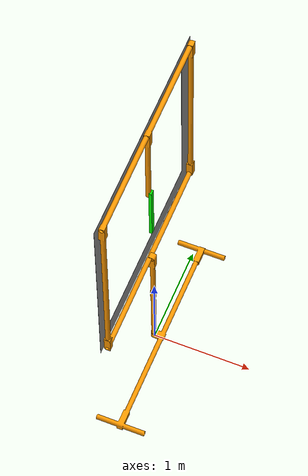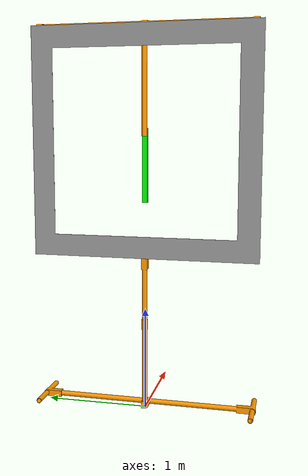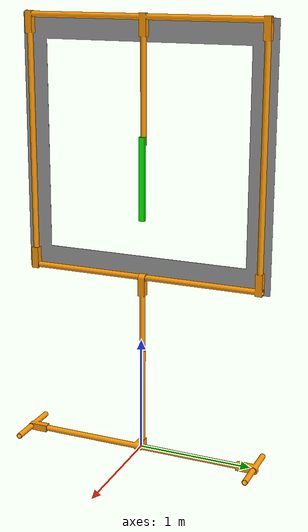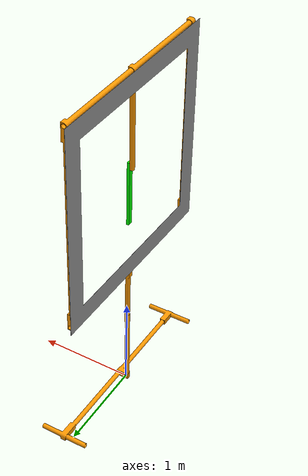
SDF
<?xml version='1.0'?>
<sdf version='1.6'>
  <model name='dynamic_gate'>
    <link name='link_0'>
      <pose frame=''>-0.18 1.12 0 1.57 -0 0</pose>
      <inertial>
        <mass>5</mass>
        <inertia>
          <ixx>0.166667</ixx>
          <ixy>0</ixy>
          <ixz>0</ixz>
          <iyy>0.166667</iyy>
          <iyz>0</iyz>
          <izz>0.166667</izz>
        </inertia>
        <pose frame=''>0 0 0 0 -0 0</pose>
      </inertial>
      <gravity>1</gravity>
      <self_collide>0</self_collide>
      <kinematic>0</kinematic>
      <visual name='visual'>
        <pose frame=''>0 0 0 0 -0 0</pose>
        <geometry>
          <mesh>
            <uri>model://dynamic_gate/meshes/base.stl</uri>
            <scale>1 1 1</scale>
          </mesh>
        </geometry>
        <material>
          <lighting>1</lighting>
          <script>
            <uri>file://media/materials/scripts/gazebo.material</uri>
            <name>Gazebo/Grey</name>
          </script>
          <ambient>1 0.6 0 1</ambient>
          <diffuse>1 0.6 0 1</diffuse>
          <specular>0.01 0.01 0.01 1</specular>
          <emissive>0 0 0 1</emissive>
          <shader type='vertex'>
            <normal_map>__default__</normal_map>
          </shader>
        </material>
        <cast_shadows>1</cast_shadows>
        <transparency>0</transparency>
      </visual>
      <collision name='collision'>
        <laser_retro>0</laser_retro>
        <max_contacts>10</max_contacts>
        <pose frame=''>0 0 0 0 -0 0</pose>
        <geometry>
          <mesh>
            <uri>model://dynamic_gate/meshes/base.stl</uri>
          </mesh>
        </geometry>
        <surface>
          <friction>
            <ode>
              <mu>1</mu>
              <mu2>1</mu2>
              <fdir1>0 0 0</fdir1>
              <slip1>0</slip1>
              <slip2>0</slip2>
            </ode>
            <torsional>
              <coefficient>1</coefficient>
              <patch_radius>0</patch_radius>
              <surface_radius>0</surface_radius>
              <use_patch_radius>1</use_patch_radius>
              <ode>
                <slip>0</slip>
              </ode>
            </torsional>
          </friction>
          <bounce>
            <restitution_coefficient>0</restitution_coefficient>
            <threshold>1e+06</threshold>
          </bounce>
          <contact>
            <collide_without_contact>0</collide_without_contact>
            <collide_without_contact_bitmask>1</collide_without_contact_bitmask>
            <collide_bitmask>1</collide_bitmask>
            <ode>
              <soft_cfm>0</soft_cfm>
              <soft_erp>0.2</soft_erp>
              <kp>1e+13</kp>
              <kd>1</kd>
              <max_vel>0.01</max_vel>
              <min_depth>0</min_depth>
            </ode>
            <bullet>
              <split_impulse>1</split_impulse>
              <split_impulse_penetration_threshold>-0.01</split_impulse_penetration_threshold>
              <soft_cfm>0</soft_cfm>
              <soft_erp>0.2</soft_erp>
              <kp>1e+13</kp>
              <kd>1</kd>
            </bullet>
          </contact>
        </surface>
      </collision>
    </link>
    <link name='link_1'>
      <pose frame=''>0 -1.05 0.53 0 -0 1.57</pose>
      <inertial>
        <mass>0.1</mass>
        <inertia>
          <ixx>0.166667</ixx>
          <ixy>0</ixy>
          <ixz>0</ixz>
          <iyy>0.166667</iyy>
          <iyz>0</iyz>
          <izz>0.166667</izz>
        </inertia>
        <pose frame=''>0 0 0 0 -0 0</pose>
      </inertial>
      <gravity>1</gravity>
      <self_collide>0</self_collide>
      <kinematic>0</kinematic>
      <visual name='visual'>
        <pose frame=''>0 0 0 0 -0 0</pose>
        <geometry>
          <mesh>
            <uri>model://dynamic_gate/meshes/frame.stl</uri>
            <scale>1 1 1</scale>
          </mesh>
        </geometry>
        <material>
          <lighting>1</lighting>
          <script>
            <uri>file://media/materials/scripts/gazebo.material</uri>
            <name>Gazebo/Grey</name>
          </script>
          <ambient>1 0.6 0 1</ambient>
          <diffuse>1 0.6 0 1</diffuse>
          <specular>0.01 0.01 0.01 1</specular>
          <emissive>0 0 0 1</emissive>
          <shader type='vertex'>
            <normal_map>__default__</normal_map>
          </shader>
        </material>
        <cast_shadows>1</cast_shadows>
        <transparency>0</transparency>
      </visual>
      <collision name='collision'>
        <laser_retro>0</laser_retro>
        <max_contacts>10</max_contacts>
        <pose frame=''>0 0 0 0 -0 0</pose>
        <geometry>
          <mesh>
            <uri>model://dynamic_gate/meshes/frame.stl</uri>
          </mesh>
        </geometry>
        <surface>
          <friction>
            <ode>
              <mu>1</mu>
              <mu2>1</mu2>
              <fdir1>0 0 0</fdir1>
              <slip1>0</slip1>
              <slip2>0</slip2>
            </ode>
            <torsional>
              <coefficient>1</coefficient>
              <patch_radius>0</patch_radius>
              <surface_radius>0</surface_radius>
              <use_patch_radius>1</use_patch_radius>
              <ode>
                <slip>0</slip>
              </ode>
            </torsional>
          </friction>
          <bounce>
            <restitution_coefficient>0</restitution_coefficient>
            <threshold>1e+06</threshold>
          </bounce>
          <contact>
            <collide_without_contact>0</collide_without_contact>
            <collide_without_contact_bitmask>1</collide_without_contact_bitmask>
            <collide_bitmask>1</collide_bitmask>
            <ode>
              <soft_cfm>0</soft_cfm>
              <soft_erp>0.2</soft_erp>
              <kp>1e+13</kp>
              <kd>1</kd>
              <max_vel>0.01</max_vel>
              <min_depth>0</min_depth>
            </ode>
            <bullet>
              <split_impulse>1</split_impulse>
              <split_impulse_penetration_threshold>-0.01</split_impulse_penetration_threshold>
              <soft_cfm>0</soft_cfm>
              <soft_erp>0.2</soft_erp>
              <kp>1e+13</kp>
              <kd>1</kd>
            </bullet>
          </contact>
        </surface>
      </collision>
    </link>
    <link name='link_2'>
      <pose frame=''>-0.08 -1.1 4.3 0 1.57 0</pose>
      <inertial>
        <mass>1</mass>
        <inertia>
          <ixx>0.166667</ixx>
          <ixy>0</ixy>
          <ixz>0</ixz>
          <iyy>0.166667</iyy>
          <iyz>0</iyz>
          <izz>0.166667</izz>
        </inertia>
        <pose frame=''>0 0 0 0 -0 0</pose>
      </inertial>
      <gravity>1</gravity>
      <self_collide>0</self_collide>
      <kinematic>0</kinematic>
      <visual name='visual'>
        <pose frame=''>0 0 0 0 -0 0</pose>
        <geometry>
          <mesh>
            <uri>model://dynamic_gate/meshes/background.stl</uri>
            <scale>1 1 1</scale>
          </mesh>
        </geometry>
        <material>
          <lighting>1</lighting>
          <script>
            <uri>file://media/materials/scripts/gazebo.material</uri>
            <name>Gazebo/Grey</name>
          </script>
          <ambient>0.9 0.9 0.9 1</ambient>
          <diffuse>0.9 0.9 0.9 1</diffuse>
          <specular>0.01 0.01 0.01 1</specular>
          <emissive>0 0 0 1</emissive>
          <shader type='vertex'>
            <normal_map>__default__</normal_map>
          </shader>
        </material>
        <cast_shadows>1</cast_shadows>
        <transparency>0</transparency>
      </visual>
      <collision name='collision'>
        <laser_retro>0</laser_retro>
        <max_contacts>10</max_contacts>
        <pose frame=''>0 0 0 0 -0 0</pose>
        <geometry>
          <mesh>
            <uri>model://dynamic_gate/meshes/background.stl</uri>
          </mesh>
        </geometry>
        <surface>
          <friction>
            <ode>
              <mu>1</mu>
              <mu2>1</mu2>
              <fdir1>0 0 0</fdir1>
              <slip1>0</slip1>
              <slip2>0</slip2>
            </ode>
            <torsional>
              <coefficient>1</coefficient>
              <patch_radius>0</patch_radius>
              <surface_radius>0</surface_radius>
              <use_patch_radius>1</use_patch_radius>
              <ode>
                <slip>0</slip>
              </ode>
            </torsional>
          </friction>
          <bounce>
            <restitution_coefficient>0</restitution_coefficient>
            <threshold>1e+06</threshold>
          </bounce>
          <contact>
            <collide_without_contact>0</collide_without_contact>
            <collide_without_contact_bitmask>1</collide_without_contact_bitmask>
            <collide_bitmask>1</collide_bitmask>
            <ode>
              <soft_cfm>0</soft_cfm>
              <soft_erp>0.2</soft_erp>
              <kp>1e+13</kp>
              <kd>1</kd>
              <max_vel>0.01</max_vel>
              <min_depth>0</min_depth>
            </ode>
            <bullet>
              <split_impulse>1</split_impulse>
              <split_impulse_penetration_threshold>-0.01</split_impulse_penetration_threshold>
              <soft_cfm>0</soft_cfm>
              <soft_erp>0.2</soft_erp>
              <kp>1e+13</kp>
              <kd>1</kd>
            </bullet>
          </contact>
        </surface>
      </collision>
    </link>
		<link name='link_3'>
      <pose frame=''>0 0.025 2.05 1.57 -1.57 0</pose>
      <inertial>
        <mass>1</mass>
        <inertia>
          <ixx>0.166667</ixx>
          <ixy>0</ixy>
          <ixz>0</ixz>
          <iyy>0.166667</iyy>
          <iyz>0</iyz>
          <izz>0.166667</izz>
        </inertia>
        <pose frame=''>0 0 0 0 -0 0</pose>
      </inertial>
      <gravity>1</gravity>
      <self_collide>0</self_collide>
      <kinematic>0</kinematic>
      <visual name='visual'>
        <pose frame=''>0 0 0 0 -0 0</pose>
        <geometry>
          <mesh>
            <uri>model://dynamic_gate/meshes/obstacle.stl</uri>
            <scale>1000 1000 300</scale>
          </mesh>
        </geometry>
        <material>
          <lighting>1</lighting>
          <script>
            <uri>file://media/materials/scripts/gazebo.material</uri>
            <name>Gazebo/Grey</name>
          </script>
          <ambient>0 1 0 1</ambient>
          <diffuse>0 1 0 1</diffuse>
          <specular>0.01 0.01 0.01 1</specular>
          <emissive>0 0 0 1</emissive>
          <shader type='vertex'>
            <normal_map>__default__</normal_map>
          </shader>
        </material>
        <cast_shadows>1</cast_shadows>
        <transparency>0</transparency>
      </visual>
      <collision name='collision'>
        <laser_retro>0</laser_retro>
        <max_contacts>10</max_contacts>
        <pose frame=''>0 0 0 0 -0 0</pose>
        <geometry>
          <mesh>
            <uri>model://dynamic_gate/meshes/obstacle.stl</uri>
          </mesh>
        </geometry>
        <surface>
          <friction>
            <ode>
              <mu>1</mu>
              <mu2>1</mu2>
              <fdir1>0 0 0</fdir1>
              <slip1>0</slip1>
              <slip2>0</slip2>
            </ode>
            <torsional>
              <coefficient>1</coefficient>
              <patch_radius>0</patch_radius>
              <surface_radius>0</surface_radius>
              <use_patch_radius>1</use_patch_radius>
              <ode>
                <slip>0</slip>
              </ode>
            </torsional>
          </friction>
          <bounce>
            <restitution_coefficient>0</restitution_coefficient>
            <threshold>1e+06</threshold>
          </bounce>
          <contact>
            <collide_without_contact>0</collide_without_contact>
            <collide_without_contact_bitmask>1</collide_without_contact_bitmask>
            <collide_bitmask>1</collide_bitmask>
            <ode>
              <soft_cfm>0</soft_cfm>
              <soft_erp>0.2</soft_erp>
              <kp>1e+13</kp>
              <kd>1</kd>
              <max_vel>0.01</max_vel>
              <min_depth>0</min_depth>
            </ode>
            <bullet>
              <split_impulse>1</split_impulse>
              <split_impulse_penetration_threshold>-0.01</split_impulse_penetration_threshold>
              <soft_cfm>0</soft_cfm>
              <soft_erp>0.2</soft_erp>
              <kp>1e+13</kp>
              <kd>1</kd>
            </bullet>
          </contact>
        </surface>
      </collision>
    </link>
		<joint type="revolute" name="moving">
      <pose>0.65 0.005 0.0255 0 0 0</pose>
      <child>link_3</child>
      <parent>link_1</parent>
      <axis>
        <xyz>0 -1 0</xyz>
      </axis>
    </joint>
		<joint name="fixed to ground" type="revolute">
			<pose>0 0 0 0 0 0</pose>
  		<parent>world</parent>
  		<child>link_0</child>
     	<axis>
        <xyz>1 1 1</xyz>
      </axis>
		</joint>
		<joint type="fixed" name="fixed_1">
      <pose>1.05 0 1.02 0 0 0</pose>
      <child>link_1</child>
      <parent>link_0</parent>
    </joint>
		<joint type="fixed" name="fixed_2">
      <pose>1.05 0 1.02 0 0 0</pose>
      <child>link_2</child>
      <parent>link_1</parent>
    </joint>

    <static>0</static>
    <allow_auto_disable>1</allow_auto_disable>
		<plugin name="gazebo_random_position_plugin" filename="librotors_gazebo_random_position_plugin.so">
			<limitX>0.75</limitX>
			<limitY>0.75</limitY>
			<limitZ>0</limitZ>
			<activate_roll>0</activate_roll>
    </plugin>
		<plugin name="gazebo_angular_vel_plugin" filename="librotors_gazebo_angular_vel_plugin.so">
			<speed>3.14</speed>
    </plugin>
  </model>
</sdf>
